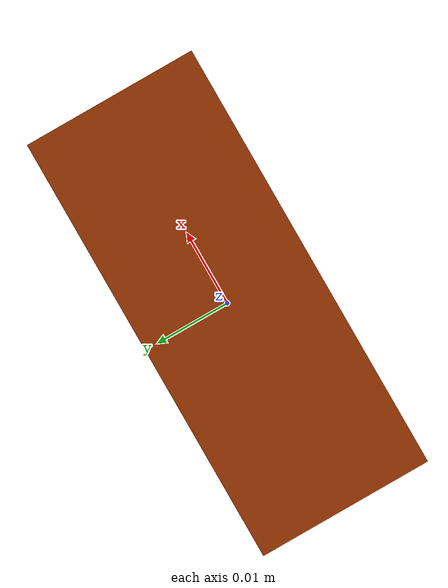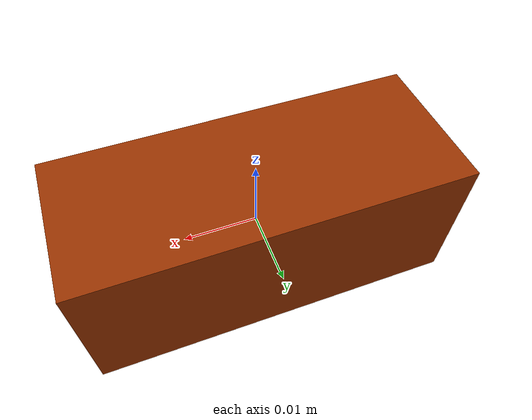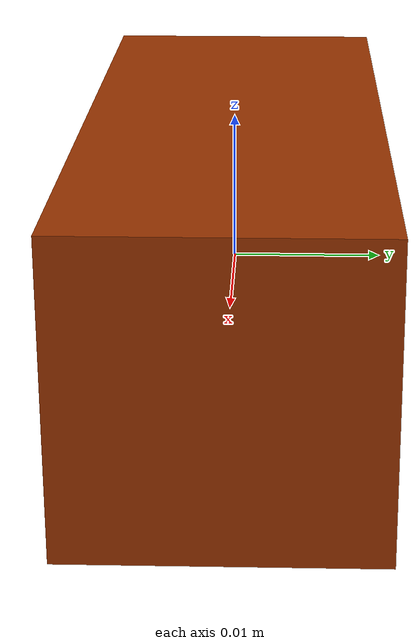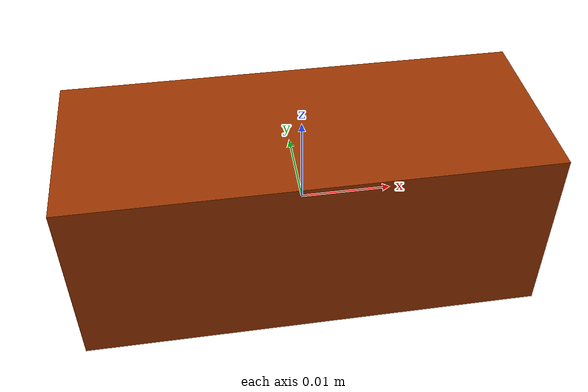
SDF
<?xml version="1.0"?>
<sdf version="1.5">
    <model name="lidar_laser">
        <static>true</static>
        <link name="laser_link">
            <collision name="collision">
                <geometry>
                    <box>
                        <size>0.05 0.02 0.02</size>
                    </box>
                </geometry>
            </collision>
            <visual name="visual">
                <geometry>
                    <box>
                        <size>0.05 0.02 0.02</size>
                    </box>
                </geometry>
                <material>
                    <ambient>0.6 0.2 0.0 1.0</ambient>
                    <diffuse>0.6 0.2 0.0 1.0</diffuse>
                    <specular>0.6 0.2 0.0 1.0</specular>
                    <emissive>0.0 0.0 0.0 1.0</emissive>
                </material>
            </visual>
            <sensor name="lidar_laser_sensor" type="ray">
                <pose>0 0 0 0 0 0</pose>
                <ray>
                    <scan display="true">
                        <vertical samples="1" resolution="1.0" min_angle="0.0" max_angle="0.0" />
                    </scan>
                    <range>
                        <min>0.15</min>
                        <max>3.0</max>
                    </range>
                </ray>
                <plugin name="lidar_laser_controller" filename="libgazebo_ros_laser.so">
                    <gaussianNoise>0.005</gaussianNoise>
                    <alwaysOn>true</alwaysOn>
                    <updateRate>20</updateRate>
                    <topicName>/laser/scan</topicName>
                    <frameName>laser_link</frameName>
                </plugin>
                <always_on>true</always_on>
                <visualize>true</visualize>
                <update_rate>2.0</update_rate>
            </sensor>
        </link>
    </model>
</sdf>
